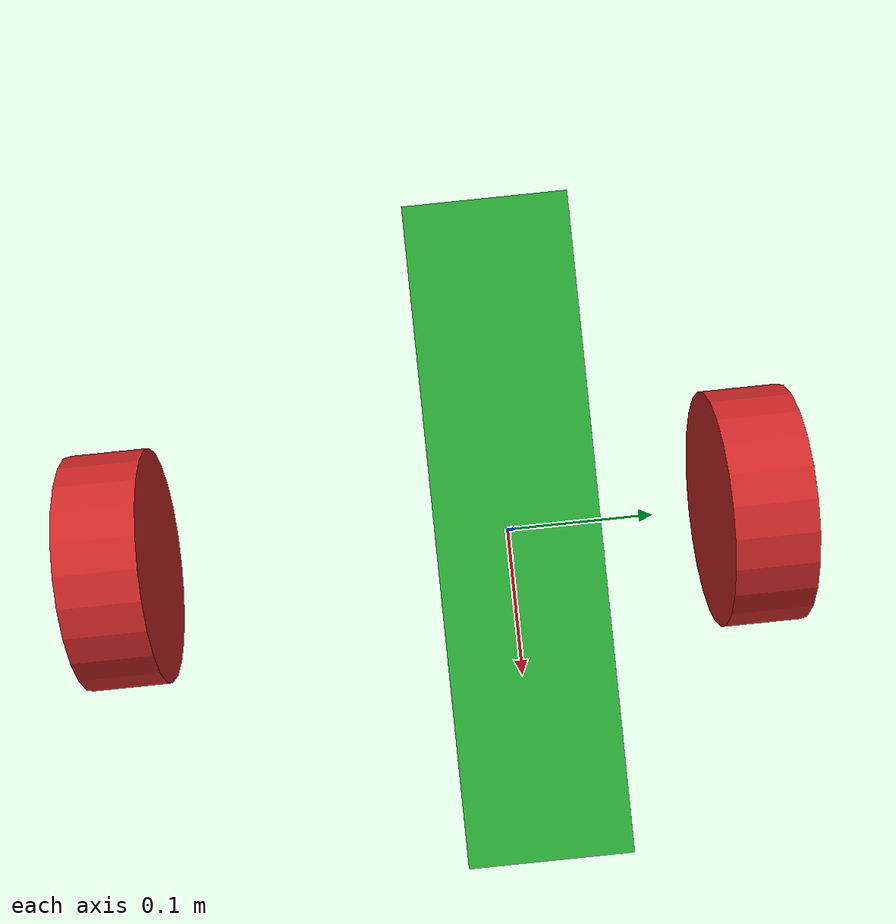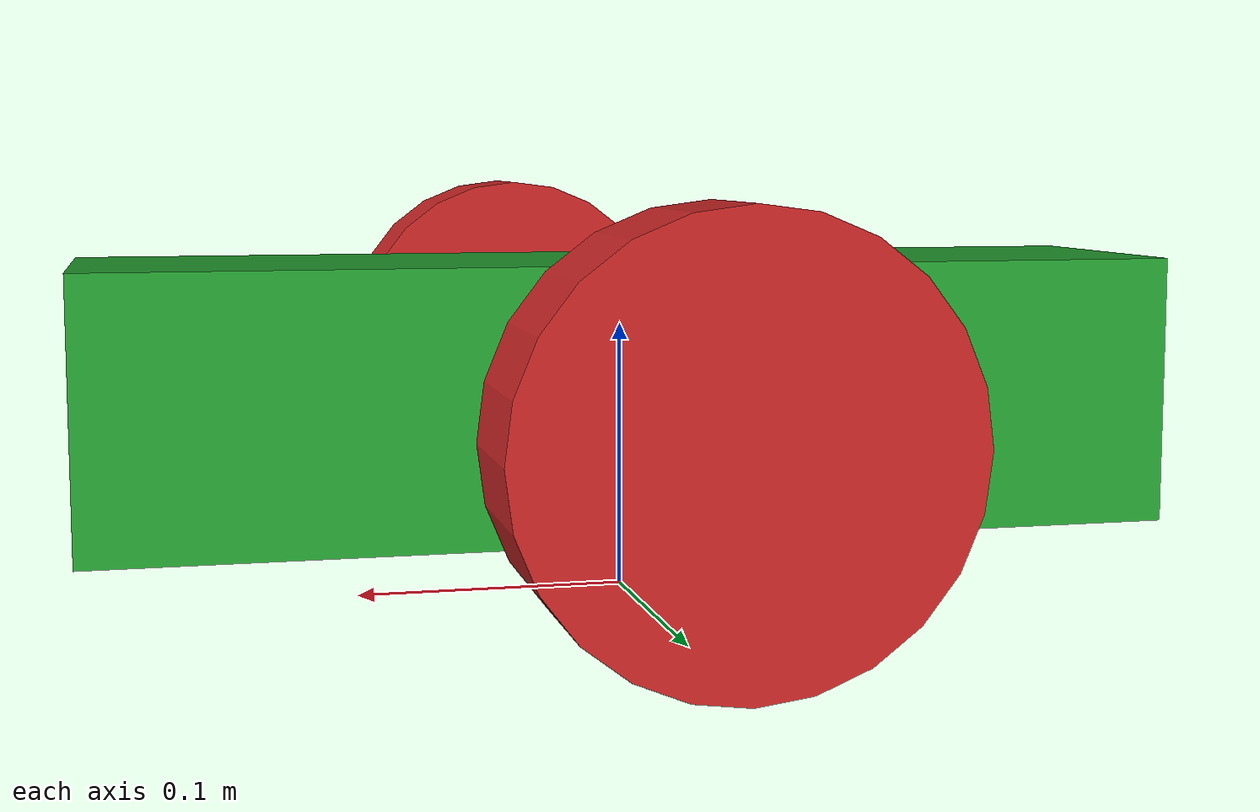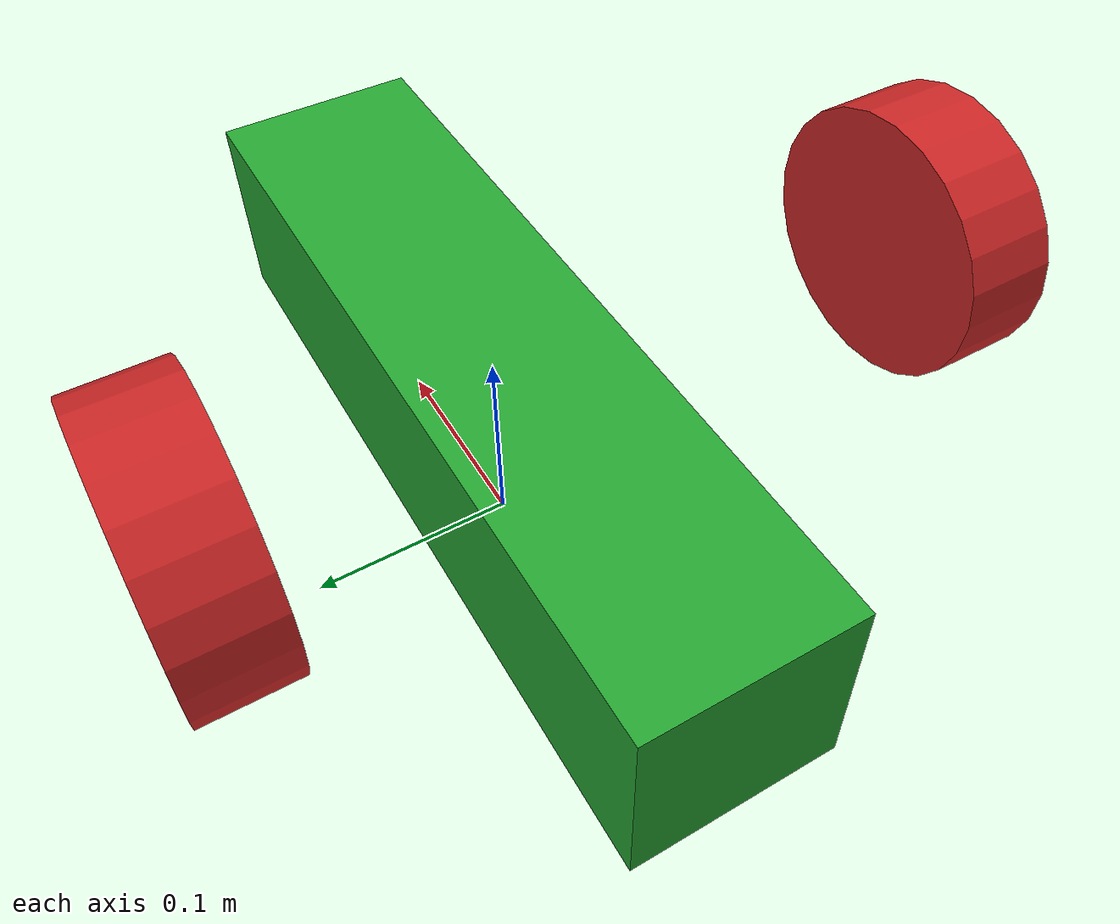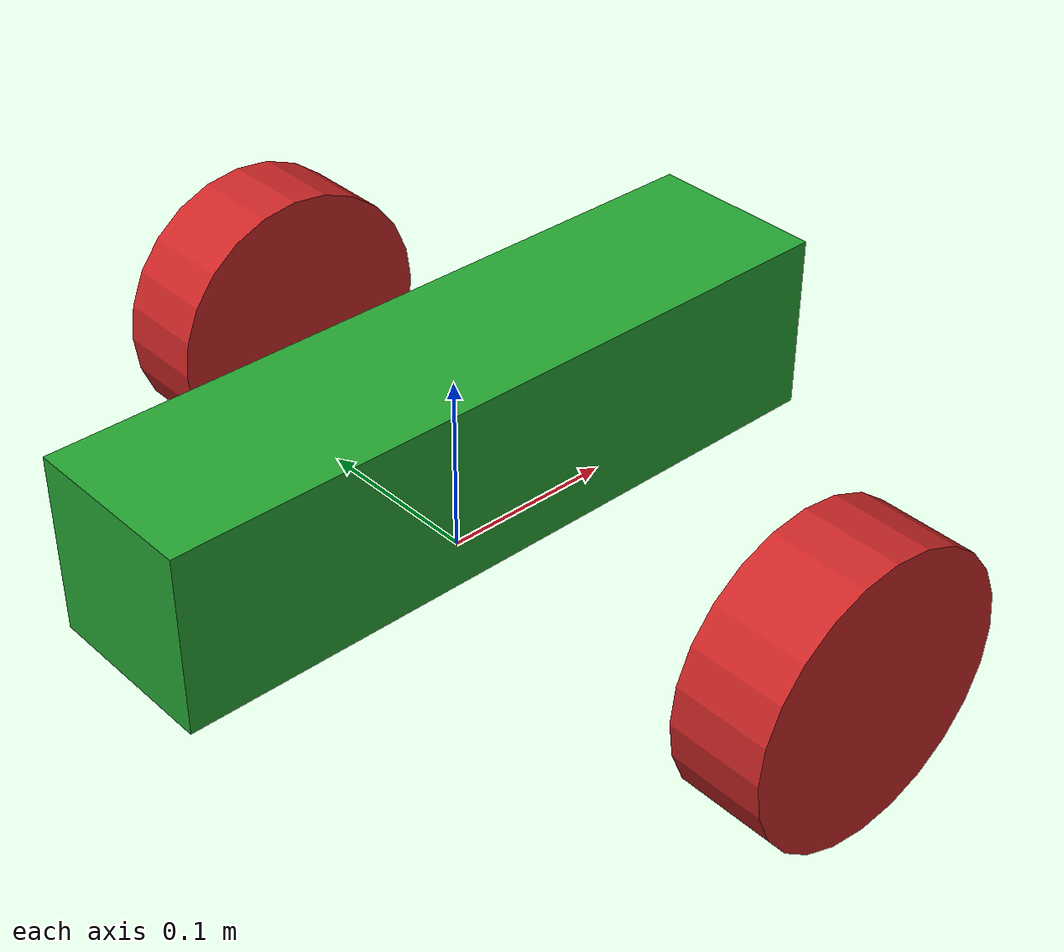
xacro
<?xml version="1.0"?>
<robot name="robot" xmlns:xacro="http://www.ros.org/wiki/xacro">
<!--
Robot model taken from http://wiki.ros.org/pr2_mechanism/Tutorials/SImple%20URDF-Controller%20Example
-->
  <xacro:include filename="$(find diff_drive_controller)/test/wheel.xacro"/>

  <xacro:property name="deg_to_rad" value="0.01745329251994329577"/>

  <!-- Constants for robot dimensions -->
  <xacro:property name="width" value="0.4" /> <!-- Square dimensions (widthxwidth) of beams -->
  <xacro:property name="wheel_radius" value="0.075" /> <!-- Link 1 -->
  <xacro:property name="thickness" value="0.05" /> <!-- Link 2 -->
  <xacro:property name="axel_offset" value="-0.05" /> <!-- Space btw top of beam and the each joint -->

  <!-- Links: inertial,visual,collision -->
  <link name="base_link">
    <inertial>
      <!-- origin is relative -->
      <origin xyz="0 0 0" rpy="0 0 0.785"/>
      <mass value="5"/>
      <inertia ixx="5" ixy="0" ixz="0" iyy="5" iyz="0" izz="5"/>
    </inertial>
    <visual>
      <geometry>
        <box size="${width} 0.1 0.1"/>
      </geometry>
    </visual>
    <collision>
      <!-- origin is relative -->
      <origin xyz="0 0 0"/>
      <geometry>
        <box size="${width} 0.1 0.1"/>
      </geometry>
    </collision>
  </link>

  <link name="base_footprint">
    <visual>
      <geometry>
        <sphere radius="0.01"/>
      </geometry>
    </visual>
    <collision>
      <origin xyz="0 0 0"/>
      <geometry>
        <sphere radius="0.00000001"/>
      </geometry>
    </collision>
  </link>
  <joint name="base_footprint_joint" type="fixed">
    <origin xyz="0 0 ${wheel_radius}" rpy="0 0 0"/>
    <child link="base_link"/>
    <parent link="base_footprint"/>
  </joint>

<!-- test for deleting warning msg -->
<link name="odom">
</link>
  <joint name="odom_joint" type="fixed">
    <origin xyz="0 0 0" rpy="0 0 0"/>
    <child link="base_footprint"/>
    <parent link="odom"/>
  </joint>

  <!-- Wheels -->
  <xacro:wheel name="wheel_0" parent="base" radius="${wheel_radius}" thickness="${thickness}">
    <origin xyz="0 ${width/2+axel_offset} 0" rpy="${-90 * deg_to_rad} 0 0"/>
  </xacro:wheel>
  <xacro:wheel name="wheel_1" parent="base" radius="${wheel_radius}" thickness="${thickness}">
    <origin xyz="0 ${-width/2+axel_offset} 0" rpy="${-90 * deg_to_rad} 0 0"/>
  </xacro:wheel>

 <!-- Sensors -->
 	<link name="imu_link"/>
            <joint name="imu_joint" type="fixed">
                <parent link="base_link"/>
                <child link="imu_link"/>
                <origin xyz="0.3 0 0" rpy="0 0 3.14159265359"/>
            </joint>

        <link name="laser1">
        </link>
            <joint name="scan_joint1" type="fixed">
                <parent link="base_link"/>
                <child link="laser1"/>
                <origin xyz="0 0 0.28" rpy="0 0 3.14159265359"/>
            </joint>
  <!-- Sensors-->
        <link name="laser2">
        </link>
            <joint name="scan_joint2" type="fixed">
                <parent link="base_link"/>
                <child link="laser2"/>
                <origin xyz="-0.47 0 0.28" rpy="0 0 0"/>
            </joint>

        <link name="laser_merger">
        </link>
            <joint name="scan_joint_merger" type="fixed">
                <parent link="base_link"/>
                <child link="laser_merger"/>
                <origin xyz="0 0 0.28" rpy="0 0 0"/>
            </joint>

   <!--Colour -->
  <gazebo reference="base_link">
    <material>Gazebo/Green</material>
  </gazebo>

  <gazebo reference="base_footprint">
    <material>Gazebo/Purple</material>
  </gazebo>

</robot>

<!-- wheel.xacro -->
<robot xmlns:xacro="http://www.ros.org/wiki/xacro">
  <xacro:macro name="wheel" params="name parent radius thickness *origin">
    <link name="${name}_link">
      <inertial>
        <origin xyz="0 0 0" rpy="0 0 0"/>
        <mass value="1"/>
        <inertia ixx="0.2" ixy="0" ixz="0" iyy="0.2" iyz="0" izz="0.2"/>
      </inertial>
      <visual>
        <origin xyz="0 0 0" rpy="0 0 0"/>
        <geometry>
          <cylinder radius="${wheel_radius}" length="${thickness}"/>
        </geometry>
      </visual>
      <collision>
        <origin xyz="0 0 0" rpy="0 0 0"/>
        <geometry>
          <cylinder radius="${wheel_radius}" length="${thickness}"/>
        </geometry>
      </collision>
    </link>

    <joint name="${name}_joint" type="continuous">
      <parent link="${parent}_link"/>
      <child link="${name}_link"/>
      <xacro:insert_block name="origin"/>
      <axis xyz="0 0 1"/>
    </joint>

    <!-- Transmission is important to link the joints and the controller -->
    <transmission name="${name}_joint_trans" type="SimpleTransmission">
      <actuator name="${name}_joint_motor"/>
      <joint name="${name}_joint">

      				<hardwareInterface>hardware_interface/VelocityJointInterface</hardwareInterface>
      </joint>
      <mechanicalReduction>1</mechanicalReduction>
      <motorTorqueConstant>1</motorTorqueConstant>

    </transmission>

    <gazebo reference="${name}_link">
      <material>Gazebo/Red</material>
    </gazebo>
  </xacro:macro>
</robot>
